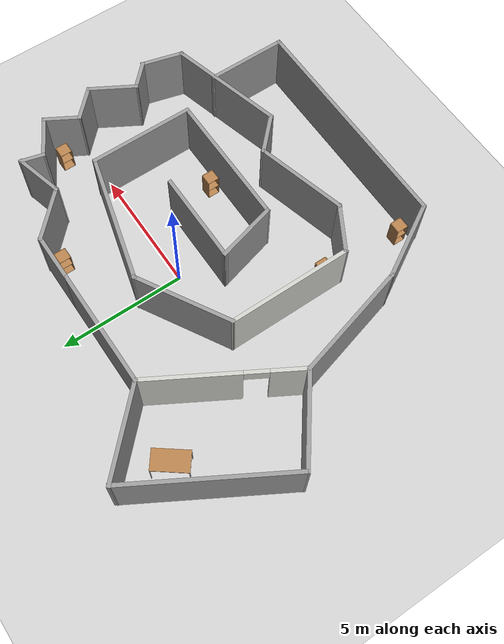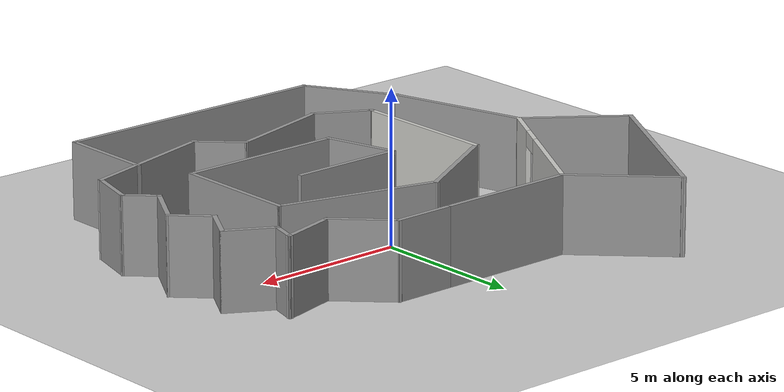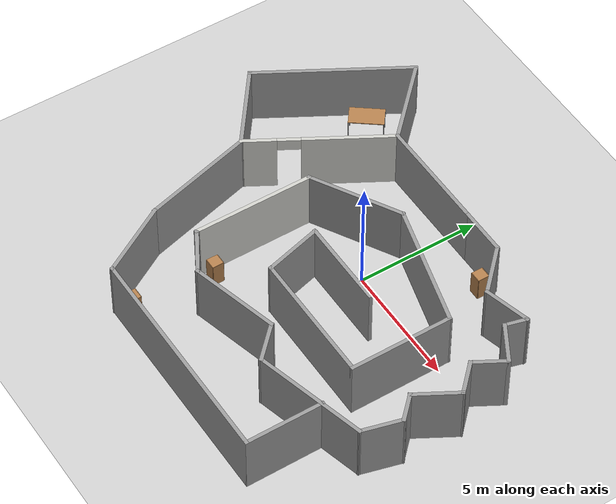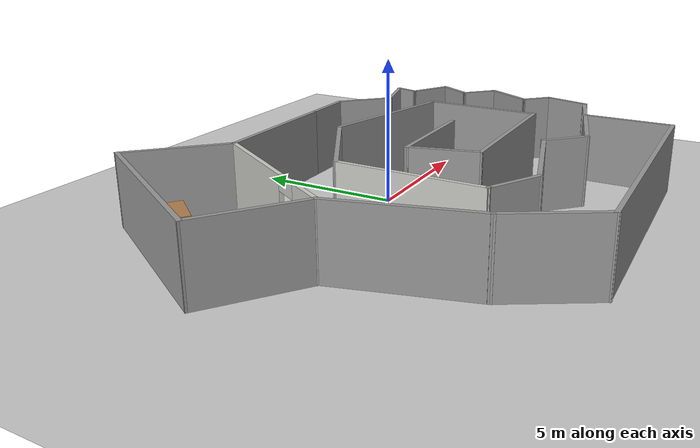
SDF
<sdf version="1.6">
 <world name="default">
  <light name="sun" type="directional">
   <pose>0 0 10 0 -0 0</pose>
   <diffuse>0.8 0.8 0.8 1</diffuse>
   <specular>0.1 0.1 0.1 1</specular>
   <attenuation>
    <range>1000</range>
    <constant>0.9</constant>
    <linear>0.01</linear>
    <quadratic>0.001</quadratic>
   </attenuation>
   <direction>-0.5 0.5 -1</direction>
  </light>
  <model name="ground_plane">
   <static>1</static>
   <link name="link">
    <collision name="collision">
     <geometry><plane><normal>0 0 1</normal><size>100 100</size></plane></geometry>
     <surface><friction><ode><mu>100</mu><mu2>50</mu2></ode></friction></surface>
    </collision>
    <visual name="visual">
     <cast_shadows>0</cast_shadows>
     <geometry><plane><normal>0 0 1</normal><size>100 100</size></plane></geometry>
     <material>
      <script><uri>file://media/materials/scripts/gazebo.material</uri><name>Gazebo/Grey</name></script>
     </material>
    </visual>
   </link>
  </model>
  <gravity>0 0 -9.8</gravity>
  <magnetic_field>6e-06 2.3e-05 -4.2e-05</magnetic_field>
  <atmosphere type="adiabatic"/>
  <physics name="default_physics" default="0" type="ode">
   <max_step_size>0.001</max_step_size>
   <real_time_factor>1</real_time_factor>
   <real_time_update_rate>1000</real_time_update_rate>
  </physics>
  <scene><ambient>0.4 0.4 0.4 1</ambient><background>0.7 0.7 0.7 1</background><shadows>1</shadows></scene>
  <spherical_coordinates>
   <surface_model>EARTH_WGS84</surface_model>
   <latitude_deg>0</latitude_deg>
   <longitude_deg>0</longitude_deg>
   <elevation>0</elevation>
   <heading_deg>0</heading_deg>
  </spherical_coordinates>
  <model name="complex_room">
   <pose>-0.705788 -1.01466 0 0 -0 0</pose>
   <link name="Wall_0">
    <collision name="Wall_0_Collision">
     <geometry><box><size>3.75 0.15 2.5</size></box></geometry>
     <pose>0 0 1.25 0 -0 0</pose>
    </collision>
    <visual name="Wall_0_Visual">
     <pose>0 0 1.25 0 -0 0</pose>
     <geometry><box><size>3.75 0.15 2.5</size></box></geometry>
     <material>
      <script><uri>file://media/materials/scripts/gazebo.material</uri><name>Gazebo/Grey</name></script>
      <ambient>1 1 1 1</ambient>
     </material>
    </visual>
    <pose>1.32014 -0.294823 0 0 -0 3.14159</pose>
   </link>
   <link name="Wall_1">
    <collision name="Wall_1_Collision">
     <geometry><box><size>2.5 0.15 2.5</size></box></geometry>
     <pose>0 0 1.25 0 -0 0</pose>
    </collision>
    <visual name="Wall_1_Visual">
     <pose>0 0 1.25 0 -0 0</pose>
     <geometry><box><size>2.5 0.15 2.5</size></box></geometry>
     <material>
      <script><uri>file://media/materials/scripts/gazebo.material</uri><name>Gazebo/Grey</name></script>
      <ambient>1 1 1 1</ambient>
     </material>
    </visual>
    <pose>-0.175747 -1.42979 0 0 0 -1.309</pose>
   </link>
   <link name="Wall_10">
    <collision name="Wall_10_Collision">
     <geometry><box><size>1.75 0.15 2.5</size></box></geometry>
     <pose>0 0 1.25 0 -0 0</pose>
    </collision>
    <visual name="Wall_10_Visual">
     <pose>0 0 1.25 0 -0 0</pose>
     <geometry><box><size>1.75 0.15 2.5</size></box></geometry>
     <material>
      <script><uri>file://media/materials/scripts/gazebo.material</uri><name>Gazebo/Grey</name></script>
      <ambient>1 1 1 1</ambient>
     </material>
    </visual>
    <pose>2.87311 -4.47871 0 0 0 -0.785398</pose>
   </link>
   <link name="Wall_11">
    <collision name="Wall_11_Collision">
     <geometry><box><size>4.75 0.15 2.5</size></box></geometry>
     <pose>0 0 1.25 0 -0 0</pose>
    </collision>
    <visual name="Wall_11_Visual">
     <pose>0 0 1.25 0 -0 0</pose>
     <geometry><box><size>4.75 0.15 2.5</size></box></geometry>
     <material>
      <script><uri>file://media/materials/scripts/gazebo.material</uri><name>Gazebo/Grey</name></script>
      <ambient>1 1 1 1</ambient>
     </material>
    </visual>
    <pose>5.66043 -4.44911 0 0 -0 0.261799</pose>
   </link>
   <link name="Wall_12">
    <collision name="Wall_12_Collision">
     <geometry><box><size>1.75 0.15 2.5</size></box></geometry>
     <pose>0 0 1.25 0 -0 0</pose>
    </collision>
    <visual name="Wall_12_Visual">
     <pose>0 0 1.25 0 -0 0</pose>
     <geometry><box><size>1.75 0.15 2.5</size></box></geometry>
     <material>
      <script><uri>file://media/materials/scripts/gazebo.material</uri><name>Gazebo/Grey</name></script>
      <ambient>1 1 1 1</ambient>
     </material>
    </visual>
    <pose>8.08911 -3.08109 0 0 -0 1.309</pose>
   </link>
   <link name="Wall_13">
    <collision name="Wall_13_Collision">
     <geometry><box><size>1.25 0.15 2.5</size></box></geometry>
     <pose>0 0 1.25 0 -0 0</pose>
    </collision>
    <visual name="Wall_13_Visual">
     <pose>0 0 1.25 0 -0 0</pose>
     <geometry><box><size>1.25 0.15 2.5</size></box></geometry>
     <material>
      <script><uri>file://media/materials/scripts/gazebo.material</uri><name>Gazebo/Grey</name></script>
      <ambient>1 1 1 1</ambient>
     </material>
    </visual>
    <pose>7.90726 -1.91944 0 0 -0 2.35619</pose>
   </link>
   <link name="Wall_14">
    <collision name="Wall_14_Collision">
     <geometry><box><size>2 0.15 2.5</size></box></geometry>
     <pose>0 0 1.25 0 -0 0</pose>
    </collision>
    <visual name="Wall_14_Visual">
     <pose>0 0 1.25 0 -0 0</pose>
     <geometry><box><size>2 0.15 2.5</size></box></geometry>
     <material>
      <script><uri>file://media/materials/scripts/gazebo.material</uri><name>Gazebo/Grey</name></script>
      <ambient>1 1 1 1</ambient>
     </material>
    </visual>
    <pose>7.98085 -0.729454 0 0 -0 1.0472</pose>
   </link>
   <link name="Wall_15">
    <collision name="Wall_15_Collision">
     <geometry><box><size>1.5 0.15 2.5</size></box></geometry>
     <pose>0 0 1.25 0 -0 0</pose>
    </collision>
    <visual name="Wall_15_Visual">
     <pose>0 0 1.25 0 -0 0</pose>
     <geometry><box><size>1.5 0.15 2.5</size></box></geometry>
     <material>
      <script><uri>file://media/materials/scripts/gazebo.material</uri><name>Gazebo/Grey</name></script>
      <ambient>1 1 1 1</ambient>
     </material>
    </visual>
    <pose>7.96605 0.548917 0 0 -0 2.35619</pose>
   </link>
   <link name="Wall_16">
    <collision name="Wall_16_Collision">
     <geometry><box><size>1.5 0.15 2.5</size></box></geometry>
     <pose>0 0 1.25 0 -0 0</pose>
    </collision>
    <visual name="Wall_16_Visual">
     <pose>0 0 1.25 0 -0 0</pose>
     <geometry><box><size>1.5 0.15 2.5</size></box></geometry>
     <material>
      <script><uri>file://media/materials/scripts/gazebo.material</uri><name>Gazebo/Grey</name></script>
      <ambient>1 1 1 1</ambient>
     </material>
    </visual>
    <pose>7.82625 1.61078 0 0 -0 1.0472</pose>
   </link>
   <link name="Wall_17">
    <collision name="Wall_17_Collision">
     <geometry><box><size>1.75 0.15 2.5</size></box></geometry>
     <pose>0 0 1.25 0 -0 0</pose>
    </collision>
    <visual name="Wall_17_Visual">
     <pose>0 0 1.25 0 -0 0</pose>
     <geometry><box><size>1.75 0.15 2.5</size></box></geometry>
     <material>
      <script><uri>file://media/materials/scripts/gazebo.material</uri><name>Gazebo/Grey</name></script>
      <ambient>1 1 1 1</ambient>
     </material>
    </visual>
    <pose>7.47093 2.59535 0 0 -0 2.61799</pose>
   </link>
   <link name="Wall_18">
    <collision name="Wall_18_Collision">
     <geometry><box><size>1 0.15 2.5</size></box></geometry>
     <pose>0 0 1.25 0 -0 0</pose>
    </collision>
    <visual name="Wall_18_Visual">
     <pose>0 0 1.25 0 -0 0</pose>
     <geometry><box><size>1 0.15 2.5</size></box></geometry>
     <material>
      <script><uri>file://media/materials/scripts/gazebo.material</uri><name>Gazebo/Grey</name></script>
      <ambient>1 1 1 1</ambient>
     </material>
    </visual>
    <pose>6.88811 3.40587 0 0 -0 1.309</pose>
   </link>
   <link name="Wall_19">
    <collision name="Wall_19_Collision">
     <geometry><box><size>2 0.15 2.5</size></box></geometry>
     <pose>0 0 1.25 0 -0 0</pose>
    </collision>
    <visual name="Wall_19_Visual">
     <pose>0 0 1.25 0 -0 0</pose>
     <geometry><box><size>2 0.15 2.5</size></box></geometry>
     <material>
      <script><uri>file://media/materials/scripts/gazebo.material</uri><name>Gazebo/Grey</name></script>
      <ambient>1 1 1 1</ambient>
     </material>
    </visual>
    <pose>6.10463 3.57698 0 0 0 -2.87979</pose>
   </link>
   <link name="Wall_2">
    <collision name="Wall_2_Collision">
     <geometry><box><size>5.5 0.15 2.5</size></box></geometry>
     <pose>0 0 1.25 0 -0 0</pose>
    </collision>
    <visual name="Wall_2_Visual">
     <pose>0 0 1.25 0 -0 0</pose>
     <geometry><box><size>5.5 0.15 2.5</size></box></geometry>
     <material>
      <script><uri>file://media/materials/scripts/gazebo.material</uri><name>Gazebo/Grey</name></script>
      <ambient>1 1 1 1</ambient>
     </material>
    </visual>
    <pose>2.80336 -2.56475 0 0 -0 0</pose>
   </link>
   <link name="Wall_20">
    <collision name="Wall_20_Collision">
     <geometry><box><size>2.25 0.15 2.5</size></box></geometry>
     <pose>0 0 1.25 0 -0 0</pose>
    </collision>
    <visual name="Wall_20_Visual">
     <pose>0 0 1.25 0 -0 0</pose>
     <geometry><box><size>2.25 0.15 2.5</size></box></geometry>
     <material>
      <script><uri>file://media/materials/scripts/gazebo.material</uri><name>Gazebo/Grey</name></script>
      <ambient>1 1 1 1</ambient>
     </material>
    </visual>
    <pose>4.46868 4.08003 0 0 -0 2.35619</pose>
   </link>
   <link name="Wall_21">
    <collision name="Wall_21_Collision">
     <geometry><box><size>2 0.15 2.5</size></box></geometry>
     <pose>0 0 1.25 0 -0 0</pose>
    </collision>
    <visual name="Wall_21_Visual">
     <pose>0 0 1.25 0 -0 0</pose>
     <geometry><box><size>2 0.15 2.5</size></box></geometry>
     <material>
      <script><uri>file://media/materials/scripts/gazebo.material</uri><name>Gazebo/Grey</name></script>
      <ambient>1 1 1 1</ambient>
     </material>
    </visual>
    <pose>2.80122 4.82249 0 0 -0 3.14159</pose>
   </link>
   <link name="Wall_22">
    <collision name="Wall_22_Collision">
     <geometry><box><size>4.75 0.15 2.5</size></box></geometry>
     <pose>0 0 1.25 0 -0 0</pose>
    </collision>
    <visual name="Wall_22_Visual">
     <pose>0 0 1.25 0 -0 0</pose>
     <geometry><box><size>4.75 0.15 2.5</size></box></geometry>
     <material>
      <script><uri>file://media/materials/scripts/gazebo.material</uri><name>Gazebo/Grey</name></script>
      <ambient>1 1 1 1</ambient>
     </material>
    </visual>
    <pose>-0.423777 4.82249 0 0 -0 3.14159</pose>
   </link>
   <link name="Wall_23">
    <pose>-4.18628 2.28937 0 0 0 -2.0944</pose>
    <visual name="Wall_23_Visual_0">
     <pose>-1.15422 0 1.25 0 -0 0</pose>
     <geometry><box><size>3.69155 0.15 2.5</size></box></geometry>
     <material>
      <script><uri>file://media/materials/scripts/gazebo.material</uri><name>Gazebo/CeilingTiled</name></script>
      <ambient>1 1 1 1</ambient>
     </material>
    </visual>
    <collision name="Wall_23_Collision_0">
     <geometry><box><size>3.69155 0.15 2.5</size></box></geometry>
     <pose>-1.15422 0 1.25 0 -0 0</pose>
    </collision>
    <visual name="Wall_23_Visual_1">
     <pose>2.29578 0 1.25 0 -0 0</pose>
     <geometry><box><size>1.40845 0.15 2.5</size></box></geometry>
     <material>
      <script><uri>file://media/materials/scripts/gazebo.material</uri><name>Gazebo/CeilingTiled</name></script>
      <ambient>1 1 1 1</ambient>
     </material>
    </visual>
    <collision name="Wall_23_Collision_1">
     <geometry><box><size>1.40845 0.15 2.5</size></box></geometry>
     <pose>2.29578 0 1.25 0 -0 0</pose>
    </collision>
    <visual name="Wall_23_Visual_2">
     <pose>1.14155 0 2.25 0 -0 0</pose>
     <geometry><box><size>0.9 0.15 0.5</size></box></geometry>
     <material>
      <script><uri>file://media/materials/scripts/gazebo.material</uri><name>Gazebo/CeilingTiled</name></script>
      <ambient>1 1 1 1</ambient>
     </material>
    </visual>
    <collision name="Wall_23_Collision_2">
     <geometry><box><size>0.9 0.15 0.5</size></box></geometry>
     <pose>1.14155 0 2.25 0 -0 0</pose>
    </collision>
   </link>
   <link name="Wall_24">
    <collision name="Wall_24_Collision">
     <geometry><box><size>4.75 0.15 2.5</size></box></geometry>
     <pose>0 0 1.25 0 -0 0</pose>
    </collision>
    <visual name="Wall_24_Visual">
     <pose>0 0 1.25 0 -0 0</pose>
     <geometry><box><size>4.75 0.15 2.5</size></box></geometry>
     <material>
      <script><uri>file://media/materials/scripts/gazebo.material</uri><name>Gazebo/Grey</name></script>
      <ambient>1 1 1 1</ambient>
     </material>
    </visual>
    <pose>-5.05349 -2.46538 0 0 0 -1.309</pose>
   </link>
   <link name="Wall_25">
    <collision name="Wall_25_Collision">
     <geometry><box><size>3.25 0.15 2.5</size></box></geometry>
     <pose>0 0 1.25 0 -0 0</pose>
    </collision>
    <visual name="Wall_25_Visual">
     <pose>0 0 1.25 0 -0 0</pose>
     <geometry><box><size>3.25 0.15 2.5</size></box></geometry>
     <material>
      <script><uri>file://media/materials/scripts/gazebo.material</uri><name>Gazebo/Grey</name></script>
      <ambient>1 1 1 1</ambient>
     </material>
    </visual>
    <pose>-3.68321 -6.02935 0 0 0 -1.0472</pose>
   </link>
   <link name="Wall_26">
    <collision name="Wall_26_Collision">
     <geometry><box><size>9.25 0.15 2.5</size></box></geometry>
     <pose>0 0 1.25 0 -0 0</pose>
    </collision>
    <visual name="Wall_26_Visual">
     <pose>0 0 1.25 0 -0 0</pose>
     <geometry><box><size>9.25 0.15 2.5</size></box></geometry>
     <material>
      <script><uri>file://media/materials/scripts/gazebo.material</uri><name>Gazebo/Grey</name></script>
      <ambient>1 1 1 1</ambient>
     </material>
    </visual>
    <pose>1.64179 -7.37169 0 0 -0 0</pose>
   </link>
   <link name="Wall_27">
    <collision name="Wall_27_Collision">
     <geometry><box><size>3.25 0.15 2.5</size></box></geometry>
     <pose>0 0 1.25 0 -0 0</pose>
    </collision>
    <visual name="Wall_27_Visual">
     <pose>0 0 1.25 0 -0 0</pose>
     <geometry><box><size>3.25 0.15 2.5</size></box></geometry>
     <material>
      <script><uri>file://media/materials/scripts/gazebo.material</uri><name>Gazebo/Grey</name></script>
      <ambient>1 1 1 1</ambient>
     </material>
    </visual>
    <pose>6.19179 -5.82169 0 0 -0 1.5708</pose>
   </link>
   <link name="Wall_29">
    <collision name="Wall_29_Collision">
     <geometry><box><size>3.75 0.15 2.5</size></box></geometry>
     <pose>0 0 1.25 0 -0 0</pose>
    </collision>
    <visual name="Wall_29_Visual">
     <pose>0 0 1.25 0 -0 0</pose>
     <geometry><box><size>3.75 0.15 2.5</size></box></geometry>
     <material>
      <script><uri>file://media/materials/scripts/gazebo.material</uri><name>Gazebo/Grey</name></script>
      <ambient>1 1 1 1</ambient>
     </material>
    </visual>
    <pose>-3.99657 6.09529 0 0 -0 2.35619</pose>
   </link>
   <link name="Wall_3">
    <collision name="Wall_3_Collision">
     <geometry><box><size>4.25 0.15 2.5</size></box></geometry>
     <pose>0 0 1.25 0 -0 0</pose>
    </collision>
    <visual name="Wall_3_Visual">
     <pose>0 0 1.25 0 -0 0</pose>
     <geometry><box><size>4.25 0.15 2.5</size></box></geometry>
     <material>
      <script><uri>file://media/materials/scripts/gazebo.material</uri><name>Gazebo/Grey</name></script>
      <ambient>1 1 1 1</ambient>
     </material>
    </visual>
    <pose>5.47837 -0.514749 0 0 -0 1.5708</pose>
   </link>
   <link name="Wall_30">
    <collision name="Wall_30_Collision">
     <geometry><box><size>6.5 0.15 2.5</size></box></geometry>
     <pose>0 0 1.25 0 -0 0</pose>
    </collision>
    <visual name="Wall_30_Visual">
     <pose>0 0 1.25 0 -0 0</pose>
     <geometry><box><size>6.5 0.15 2.5</size></box></geometry>
     <material>
      <script><uri>file://media/materials/scripts/gazebo.material</uri><name>Gazebo/Grey</name></script>
      <ambient>1 1 1 1</ambient>
     </material>
    </visual>
    <pose>-6.85686 4.61845 0 0 0 -2.0944</pose>
   </link>
   <link name="Wall_31">
    <collision name="Wall_31_Collision">
     <geometry><box><size>3.65403 0.15 2.5</size></box></geometry>
     <pose>0 0 1.25 0 -0 0</pose>
    </collision>
    <visual name="Wall_31_Visual">
     <pose>0 0 1.25 0 -0 0</pose>
     <geometry><box><size>3.65403 0.15 2.5</size></box></geometry>
     <material>
      <script><uri>file://media/materials/scripts/gazebo.material</uri><name>Gazebo/Grey</name></script>
      <ambient>1 1 1 1</ambient>
     </material>
    </visual>
    <pose>-7.04657 0.812531 0 0 0 -0.647127</pose>
   </link>
   <link name="Wall_4">
    <collision name="Wall_4_Collision">
     <geometry><box><size>5.25 0.15 2.5</size></box></geometry>
     <pose>0 0 1.25 0 -0 0</pose>
    </collision>
    <visual name="Wall_4_Visual">
     <pose>0 0 1.25 0 -0 0</pose>
     <geometry><box><size>5.25 0.15 2.5</size></box></geometry>
     <material>
      <script><uri>file://media/materials/scripts/gazebo.material</uri><name>Gazebo/Grey</name></script>
      <ambient>1 1 1 1</ambient>
     </material>
    </visual>
    <pose>3.01525 2.19524 0 0 -0 2.87979</pose>
   </link>
   <link name="Wall_5">
    <collision name="Wall_5_Collision">
     <geometry><box><size>4 0.15 2.5</size></box></geometry>
     <pose>0 0 1.25 0 -0 0</pose>
    </collision>
    <visual name="Wall_5_Visual">
     <pose>0 0 1.25 0 -0 0</pose>
     <geometry><box><size>4 0.15 2.5</size></box></geometry>
     <material>
      <script><uri>file://media/materials/scripts/gazebo.material</uri><name>Gazebo/Grey</name></script>
      <ambient>1 1 1 1</ambient>
     </material>
    </visual>
    <pose>-1.11495 1.89273 0 0 0 -2.61799</pose>
   </link>
   <link name="Wall_6">
    <collision name="Wall_6_Collision">
     <geometry><box><size>5 0.15 2.5</size></box></geometry>
     <pose>0 0 1.25 0 -0 0</pose>
    </collision>
    <visual name="Wall_6_Visual">
     <pose>0 0 1.25 0 -0 0</pose>
     <geometry><box><size>5 0.15 2.5</size></box></geometry>
     <material>
      <script><uri>file://media/materials/scripts/gazebo.material</uri><name>Gazebo/CeilingTiled</name></script>
      <ambient>1 1 1 1</ambient>
     </material>
    </visual>
    <pose>-2.78205 -1.49477 0 0 0 -1.5708</pose>
   </link>
   <link name="Wall_7">
    <collision name="Wall_7_Collision">
     <geometry><box><size>0.16 0.15 2.5</size></box></geometry>
     <pose>0 0 1.25 0 -0 0</pose>
    </collision>
    <visual name="Wall_7_Visual">
     <pose>0 0 1.25 0 -0 0</pose>
     <geometry><box><size>0.16 0.15 2.5</size></box></geometry>
     <material>
      <script><uri>file://media/materials/scripts/gazebo.material</uri><name>Gazebo/Grey</name></script>
      <ambient>1 1 1 1</ambient>
     </material>
    </visual>
    <pose>-2.77705 -3.91977 0 0 -0 0</pose>
   </link>
   <link name="Wall_8">
    <collision name="Wall_8_Collision">
     <geometry><box><size>2 0.15 2.5</size></box></geometry>
     <pose>0 0 1.25 0 -0 0</pose>
    </collision>
    <visual name="Wall_8_Visual">
     <pose>0 0 1.25 0 -0 0</pose>
     <geometry><box><size>2 0.15 2.5</size></box></geometry>
     <material>
      <script><uri>file://media/materials/scripts/gazebo.material</uri><name>Gazebo/Grey</name></script>
      <ambient>1 1 1 1</ambient>
     </material>
    </visual>
    <pose>-1.97098 -4.38227 0 0 0 -0.523599</pose>
   </link>
   <link name="Wall_9">
    <collision name="Wall_9_Collision">
     <geometry><box><size>3.75 0.15 2.5</size></box></geometry>
     <pose>0 0 1.25 0 -0 0</pose>
    </collision>
    <visual name="Wall_9_Visual">
     <pose>0 0 1.25 0 -0 0</pose>
     <geometry><box><size>3.75 0.15 2.5</size></box></geometry>
     <material>
      <script><uri>file://media/materials/scripts/gazebo.material</uri><name>Gazebo/Grey</name></script>
      <ambient>1 1 1 1</ambient>
     </material>
    </visual>
    <pose>0.568759 -4.3789 0 0 -0 0.261799</pose>
   </link>
   <static>1</static>
  </model>
  <model name="table">
   <static>0</static>
   <link name="link">
    <collision name="surface">
     <pose>0 0 1 0 -0 0</pose>
     <geometry><box><size>1.5 0.8 0.03</size></box></geometry>
     <surface><friction><ode><mu>0.6</mu><mu2>0.6</mu2></ode></friction></surface>
    </collision>
    <visual name="visual1">
     <pose>0 0 1 0 -0 0</pose>
     <geometry><box><size>1.4 0.8 0.04</size></box></geometry>
     <material>
      <script><uri>file://media/materials/scripts/gazebo.material</uri><name>Gazebo/Wood</name></script>
     </material>
    </visual>
    <collision name="front_left_leg">
     <pose>0.68 0.38 0.5 0 -0 0</pose>
     <geometry><cylinder><radius>0.02</radius><length>1</length></cylinder></geometry>
    </collision>
    <visual name="front_left_leg">
     <pose>0.68 0.38 0.5 0 -0 0</pose>
     <geometry><cylinder><radius>0.02</radius><length>1</length></cylinder></geometry>
     <material>
      <script><uri>file://media/materials/scripts/gazebo.material</uri><name>Gazebo/Grey</name></script>
     </material>
    </visual>
    <collision name="front_right_leg">
     <pose>0.68 -0.38 0.5 0 -0 0</pose>
     <geometry><cylinder><radius>0.02</radius><length>1</length></cylinder></geometry>
    </collision>
    <visual name="front_right_leg">
     <pose>0.68 -0.38 0.5 0 -0 0</pose>
     <geometry><cylinder><radius>0.02</radius><length>1</length></cylinder></geometry>
     <material>
      <script><uri>file://media/materials/scripts/gazebo.material</uri><name>Gazebo/Grey</name></script>
     </material>
    </visual>
    <collision name="back_right_leg">
     <pose>-0.68 -0.38 0.5 0 -0 0</pose>
     <geometry><cylinder><radius>0.02</radius><length>1</length></cylinder></geometry>
    </collision>
    <visual name="back_right_leg">
     <pose>-0.68 -0.38 0.5 0 -0 0</pose>
     <geometry><cylinder><radius>0.02</radius><length>1</length></cylinder></geometry>
     <material>
      <script><uri>file://media/materials/scripts/gazebo.material</uri><name>Gazebo/Grey</name></script>
     </material>
    </visual>
    <collision name="back_left_leg">
     <pose>-0.68 0.38 0.5 0 -0 0</pose>
     <geometry><cylinder><radius>0.02</radius><length>1</length></cylinder></geometry>
    </collision>
    <visual name="back_left_leg">
     <pose>-0.68 0.38 0.5 0 -0 0</pose>
     <geometry><cylinder><radius>0.02</radius><length>1</length></cylinder></geometry>
     <material>
      <script><uri>file://media/materials/scripts/gazebo.material</uri><name>Gazebo/Grey</name></script>
     </material>
    </visual>
    <inertial>
     <inertia><ixx>1</ixx><ixy>0</ixy><ixz>0</ixz><iyy>1</iyy><iyz>0</iyz><izz>1</izz></inertia>
     <mass>1</mass>
    </inertial>
   </link>
   <pose>-6.00812 4.15369 -2e-06 0 -0 0.920163</pose>
  </model>
  <model name="cabinet">
   <static>1</static>
   <link name="cabinet_bottom_plate">
    <inertial>
     <pose>0 0 -1 0 -0 0</pose>
     <inertia><ixx>2.05</ixx><ixy>0</ixy><ixz>0</ixz><iyy>2.05</iyy><iyz>0</iyz><izz>2.05</izz></inertia>
     <mass>25</mass>
    </inertial>
    <collision name="cabinet_bottom_plate_geom">
     <pose>0 0 0.01 0 -0 0</pose>
     <geometry><box><size>0.45 0.45 0.02</size></box></geometry>
    </collision>
    <visual name="cabinet_bottom_plate_geom_visual">
     <pose>0 0 0.01 0 -0 0</pose>
     <geometry><box><size>0.45 0.45 0.02</size></box></geometry>
     <material>
      <script><uri>file://media/materials/scripts/gazebo.material</uri><name>Gazebo/Wood</name></script>
     </material>
    </visual>
    <collision name="cabinet_bottom_plate_geom_cabinet_back_plate">
     <pose>0.235 0 0.51 0 -0 0</pose>
     <geometry><box><size>0.02 0.45 1.02</size></box></geometry>
    </collision>
    <visual name="cabinet_bottom_plate_geom_cabinet_back_plate_visual">
     <pose>0.235 0 0.51 0 -0 0</pose>
     <geometry><box><size>0.02 0.45 1.02</size></box></geometry>
     <material>
      <script><uri>file://media/materials/scripts/gazebo.material</uri><name>Gazebo/Wood</name></script>
     </material>
    </visual>
    <collision name="cabinet_bottom_plate_geom_cabinet_left_plate">
     <pose>0 0.235 0.51 0 -0 0</pose>
     <geometry><box><size>0.45 0.02 1.02</size></box></geometry>
    </collision>
    <visual name="cabinet_bottom_plate_geom_cabinet_left_plate_visual">
     <pose>0 0.235 0.51 0 -0 0</pose>
     <geometry><box><size>0.45 0.02 1.02</size></box></geometry>
     <material>
      <script><uri>file://media/materials/scripts/gazebo.material</uri><name>Gazebo/Wood</name></script>
     </material>
    </visual>
    <collision name="cabinet_bottom_plate_geom_cabinet_middle_plate">
     <pose>0 0 0.51 0 -0 0</pose>
     <geometry><box><size>0.45 0.45 0.02</size></box></geometry>
    </collision>
    <visual name="cabinet_bottom_plate_geom_cabinet_middle_plate_visual">
     <pose>0 0 0.51 0 -0 0</pose>
     <geometry><box><size>0.45 0.45 0.02</size></box></geometry>
     <material>
      <script><uri>file://media/materials/scripts/gazebo.material</uri><name>Gazebo/Wood</name></script>
     </material>
    </visual>
    <collision name="cabinet_bottom_plate_geom_cabinet_right_plate">
     <pose>0 -0.235 0.51 0 -0 0</pose>
     <geometry><box><size>0.45 0.02 1.02</size></box></geometry>
    </collision>
    <visual name="cabinet_bottom_plate_geom_cabinet_right_plate_visual">
     <pose>0 -0.235 0.51 0 -0 0</pose>
     <geometry><box><size>0.45 0.02 1.02</size></box></geometry>
     <material>
      <script><uri>file://media/materials/scripts/gazebo.material</uri><name>Gazebo/Wood</name></script>
     </material>
    </visual>
    <collision name="cabinet_bottom_plate_geom_cabinet_top_plate">
     <pose>0 0 1.01 0 -0 0</pose>
     <geometry><box><size>0.45 0.45 0.02</size></box></geometry>
    </collision>
    <visual name="cabinet_bottom_plate_geom_cabinet_top_plate_visual">
     <pose>0 0 1.01 0 -0 0</pose>
     <geometry><box><size>0.45 0.45 0.02</size></box></geometry>
     <material>
      <script><uri>file://media/materials/scripts/gazebo.material</uri><name>Gazebo/Wood</name></script>
     </material>
    </visual>
   </link>
   <pose>2.76634 3.32356 0 0 -0 0</pose>
  </model>
  <model name="cabinet_0">
   <static>1</static>
   <link name="cabinet_bottom_plate">
    <inertial>
     <pose>0 0 -1 0 -0 0</pose>
     <inertia><ixx>2.05</ixx><ixy>0</ixy><ixz>0</ixz><iyy>2.05</iyy><iyz>0</iyz><izz>2.05</izz></inertia>
     <mass>25</mass>
    </inertial>
    <collision name="cabinet_bottom_plate_geom">
     <pose>0 0 0.01 0 -0 0</pose>
     <geometry><box><size>0.45 0.45 0.02</size></box></geometry>
    </collision>
    <visual name="cabinet_bottom_plate_geom_visual">
     <pose>0 0 0.01 0 -0 0</pose>
     <geometry><box><size>0.45 0.45 0.02</size></box></geometry>
     <material>
      <script><uri>file://media/materials/scripts/gazebo.material</uri><name>Gazebo/Wood</name></script>
     </material>
    </visual>
    <collision name="cabinet_bottom_plate_geom_cabinet_back_plate">
     <pose>0.235 0 0.51 0 -0 0</pose>
     <geometry><box><size>0.02 0.45 1.02</size></box></geometry>
    </collision>
    <visual name="cabinet_bottom_plate_geom_cabinet_back_plate_visual">
     <pose>0.235 0 0.51 0 -0 0</pose>
     <geometry><box><size>0.02 0.45 1.02</size></box></geometry>
     <material>
      <script><uri>file://media/materials/scripts/gazebo.material</uri><name>Gazebo/Wood</name></script>
     </material>
    </visual>
    <collision name="cabinet_bottom_plate_geom_cabinet_left_plate">
     <pose>0 0.235 0.51 0 -0 0</pose>
     <geometry><box><size>0.45 0.02 1.02</size></box></geometry>
    </collision>
    <visual name="cabinet_bottom_plate_geom_cabinet_left_plate_visual">
     <pose>0 0.235 0.51 0 -0 0</pose>
     <geometry><box><size>0.45 0.02 1.02</size></box></geometry>
     <material>
      <script><uri>file://media/materials/scripts/gazebo.material</uri><name>Gazebo/Wood</name></script>
     </material>
    </visual>
    <collision name="cabinet_bottom_plate_geom_cabinet_middle_plate">
     <pose>0 0 0.51 0 -0 0</pose>
     <geometry><box><size>0.45 0.45 0.02</size></box></geometry>
    </collision>
    <visual name="cabinet_bottom_plate_geom_cabinet_middle_plate_visual">
     <pose>0 0 0.51 0 -0 0</pose>
     <geometry><box><size>0.45 0.45 0.02</size></box></geometry>
     <material>
      <script><uri>file://media/materials/scripts/gazebo.material</uri><name>Gazebo/Wood</name></script>
     </material>
    </visual>
    <collision name="cabinet_bottom_plate_geom_cabinet_right_plate">
     <pose>0 -0.235 0.51 0 -0 0</pose>
     <geometry><box><size>0.45 0.02 1.02</size></box></geometry>
    </collision>
    <visual name="cabinet_bottom_plate_geom_cabinet_right_plate_visual">
     <pose>0 -0.235 0.51 0 -0 0</pose>
     <geometry><box><size>0.45 0.02 1.02</size></box></geometry>
     <material>
      <script><uri>file://media/materials/scripts/gazebo.material</uri><name>Gazebo/Wood</name></script>
     </material>
    </visual>
    <collision name="cabinet_bottom_plate_geom_cabinet_top_plate">
     <pose>0 0 1.01 0 -0 0</pose>
     <geometry><box><size>0.45 0.45 0.02</size></box></geometry>
    </collision>
    <visual name="cabinet_bottom_plate_geom_cabinet_top_plate_visual">
     <pose>0 0 1.01 0 -0 0</pose>
     <geometry><box><size>0.45 0.45 0.02</size></box></geometry>
     <material>
      <script><uri>file://media/materials/scripts/gazebo.material</uri><name>Gazebo/Wood</name></script>
     </material>
    </visual>
   </link>
   <pose>-3.2307 -7.85388 0 0 -0 0</pose>
  </model>
  <model name="cabinet_1">
   <static>1</static>
   <link name="cabinet_bottom_plate">
    <inertial>
     <pose>0 0 -1 0 -0 0</pose>
     <inertia><ixx>2.05</ixx><ixy>0</ixy><ixz>0</ixz><iyy>2.05</iyy><iyz>0</iyz><izz>2.05</izz></inertia>
     <mass>25</mass>
    </inertial>
    <collision name="cabinet_bottom_plate_geom">
     <pose>0 0 0.01 0 -0 0</pose>
     <geometry><box><size>0.45 0.45 0.02</size></box></geometry>
    </collision>
    <visual name="cabinet_bottom_plate_geom_visual">
     <pose>0 0 0.01 0 -0 0</pose>
     <geometry><box><size>0.45 0.45 0.02</size></box></geometry>
     <material>
      <script><uri>file://media/materials/scripts/gazebo.material</uri><name>Gazebo/Wood</name></script>
     </material>
    </visual>
    <collision name="cabinet_bottom_plate_geom_cabinet_back_plate">
     <pose>0.235 0 0.51 0 -0 0</pose>
     <geometry><box><size>0.02 0.45 1.02</size></box></geometry>
    </collision>
    <visual name="cabinet_bottom_plate_geom_cabinet_back_plate_visual">
     <pose>0.235 0 0.51 0 -0 0</pose>
     <geometry><box><size>0.02 0.45 1.02</size></box></geometry>
     <material>
      <script><uri>file://media/materials/scripts/gazebo.material</uri><name>Gazebo/Wood</name></script>
     </material>
    </visual>
    <collision name="cabinet_bottom_plate_geom_cabinet_left_plate">
     <pose>0 0.235 0.51 0 -0 0</pose>
     <geometry><box><size>0.45 0.02 1.02</size></box></geometry>
    </collision>
    <visual name="cabinet_bottom_plate_geom_cabinet_left_plate_visual">
     <pose>0 0.235 0.51 0 -0 0</pose>
     <geometry><box><size>0.45 0.02 1.02</size></box></geometry>
     <material>
      <script><uri>file://media/materials/scripts/gazebo.material</uri><name>Gazebo/Wood</name></script>
     </material>
    </visual>
    <collision name="cabinet_bottom_plate_geom_cabinet_middle_plate">
     <pose>0 0 0.51 0 -0 0</pose>
     <geometry><box><size>0.45 0.45 0.02</size></box></geometry>
    </collision>
    <visual name="cabinet_bottom_plate_geom_cabinet_middle_plate_visual">
     <pose>0 0 0.51 0 -0 0</pose>
     <geometry><box><size>0.45 0.45 0.02</size></box></geometry>
     <material>
      <script><uri>file://media/materials/scripts/gazebo.material</uri><name>Gazebo/Wood</name></script>
     </material>
    </visual>
    <collision name="cabinet_bottom_plate_geom_cabinet_right_plate">
     <pose>0 -0.235 0.51 0 -0 0</pose>
     <geometry><box><size>0.45 0.02 1.02</size></box></geometry>
    </collision>
    <visual name="cabinet_bottom_plate_geom_cabinet_right_plate_visual">
     <pose>0 -0.235 0.51 0 -0 0</pose>
     <geometry><box><size>0.45 0.02 1.02</size></box></geometry>
     <material>
      <script><uri>file://media/materials/scripts/gazebo.material</uri><name>Gazebo/Wood</name></script>
     </material>
    </visual>
    <collision name="cabinet_bottom_plate_geom_cabinet_top_plate">
     <pose>0 0 1.01 0 -0 0</pose>
     <geometry><box><size>0.45 0.45 0.02</size></box></geometry>
    </collision>
    <visual name="cabinet_bottom_plate_geom_cabinet_top_plate_visual">
     <pose>0 0 1.01 0 -0 0</pose>
     <geometry><box><size>0.45 0.45 0.02</size></box></geometry>
     <material>
      <script><uri>file://media/materials/scripts/gazebo.material</uri><name>Gazebo/Wood</name></script>
     </material>
    </visual>
   </link>
   <pose>-2.98348 -4.50409 0 0 -0 0</pose>
  </model>
  <model name="cabinet_3">
   <static>1</static>
   <link name="cabinet_bottom_plate">
    <inertial>
     <pose>0 0 -1 0 -0 0</pose>
     <inertia><ixx>2.05</ixx><ixy>0</ixy><ixz>0</ixz><iyy>2.05</iyy><iyz>0</iyz><izz>2.05</izz></inertia>
     <mass>25</mass>
    </inertial>
    <collision name="cabinet_bottom_plate_geom">
     <pose>0 0 0.01 0 -0 0</pose>
     <geometry><box><size>0.45 0.45 0.02</size></box></geometry>
    </collision>
    <visual name="cabinet_bottom_plate_geom_visual">
     <pose>0 0 0.01 0 -0 0</pose>
     <geometry><box><size>0.45 0.45 0.02</size></box></geometry>
     <material>
      <script><uri>file://media/materials/scripts/gazebo.material</uri><name>Gazebo/Wood</name></script>
     </material>
    </visual>
    <collision name="cabinet_bottom_plate_geom_cabinet_back_plate">
     <pose>0.235 0 0.51 0 -0 0</pose>
     <geometry><box><size>0.02 0.45 1.02</size></box></geometry>
    </collision>
    <visual name="cabinet_bottom_plate_geom_cabinet_back_plate_visual">
     <pose>0.235 0 0.51 0 -0 0</pose>
     <geometry><box><size>0.02 0.45 1.02</size></box></geometry>
     <material>
      <script><uri>file://media/materials/scripts/gazebo.material</uri><name>Gazebo/Wood</name></script>
     </material>
    </visual>
    <collision name="cabinet_bottom_plate_geom_cabinet_left_plate">
     <pose>0 0.235 0.51 0 -0 0</pose>
     <geometry><box><size>0.45 0.02 1.02</size></box></geometry>
    </collision>
    <visual name="cabinet_bottom_plate_geom_cabinet_left_plate_visual">
     <pose>0 0.235 0.51 0 -0 0</pose>
     <geometry><box><size>0.45 0.02 1.02</size></box></geometry>
     <material>
      <script><uri>file://media/materials/scripts/gazebo.material</uri><name>Gazebo/Wood</name></script>
     </material>
    </visual>
    <collision name="cabinet_bottom_plate_geom_cabinet_middle_plate">
     <pose>0 0 0.51 0 -0 0</pose>
     <geometry><box><size>0.45 0.45 0.02</size></box></geometry>
    </collision>
    <visual name="cabinet_bottom_plate_geom_cabinet_middle_plate_visual">
     <pose>0 0 0.51 0 -0 0</pose>
     <geometry><box><size>0.45 0.45 0.02</size></box></geometry>
     <material>
      <script><uri>file://media/materials/scripts/gazebo.material</uri><name>Gazebo/Wood</name></script>
     </material>
    </visual>
    <collision name="cabinet_bottom_plate_geom_cabinet_right_plate">
     <pose>0 -0.235 0.51 0 -0 0</pose>
     <geometry><box><size>0.45 0.02 1.02</size></box></geometry>
    </collision>
    <visual name="cabinet_bottom_plate_geom_cabinet_right_plate_visual">
     <pose>0 -0.235 0.51 0 -0 0</pose>
     <geometry><box><size>0.45 0.02 1.02</size></box></geometry>
     <material>
      <script><uri>file://media/materials/scripts/gazebo.material</uri><name>Gazebo/Wood</name></script>
     </material>
    </visual>
    <collision name="cabinet_bottom_plate_geom_cabinet_top_plate">
     <pose>0 0 1.01 0 -0 0</pose>
     <geometry><box><size>0.45 0.45 0.02</size></box></geometry>
    </collision>
    <visual name="cabinet_bottom_plate_geom_cabinet_top_plate_visual">
     <pose>0 0 1.01 0 -0 0</pose>
     <geometry><box><size>0.45 0.45 0.02</size></box></geometry>
     <material>
      <script><uri>file://media/materials/scripts/gazebo.material</uri><name>Gazebo/Wood</name></script>
     </material>
    </visual>
   </link>
   <pose>2.53459 -3.12814 0 0 -0 0</pose>
  </model>
  <model name="cabinet_4">
   <static>1</static>
   <link name="cabinet_bottom_plate">
    <inertial>
     <pose>0 0 -1 0 -0 0</pose>
     <inertia><ixx>2.05</ixx><ixy>0</ixy><ixz>0</ixz><iyy>2.05</iyy><iyz>0</iyz><izz>2.05</izz></inertia>
     <mass>25</mass>
    </inertial>
    <collision name="cabinet_bottom_plate_geom">
     <pose>0 0 0.01 0 -0 0</pose>
     <geometry><box><size>0.45 0.45 0.02</size></box></geometry>
    </collision>
    <visual name="cabinet_bottom_plate_geom_visual">
     <pose>0 0 0.01 0 -0 0</pose>
     <geometry><box><size>0.45 0.45 0.02</size></box></geometry>
     <material>
      <script><uri>file://media/materials/scripts/gazebo.material</uri><name>Gazebo/Wood</name></script>
     </material>
    </visual>
    <collision name="cabinet_bottom_plate_geom_cabinet_back_plate">
     <pose>0.235 0 0.51 0 -0 0</pose>
     <geometry><box><size>0.02 0.45 1.02</size></box></geometry>
    </collision>
    <visual name="cabinet_bottom_plate_geom_cabinet_back_plate_visual">
     <pose>0.235 0 0.51 0 -0 0</pose>
     <geometry><box><size>0.02 0.45 1.02</size></box></geometry>
     <material>
      <script><uri>file://media/materials/scripts/gazebo.material</uri><name>Gazebo/Wood</name></script>
     </material>
    </visual>
    <collision name="cabinet_bottom_plate_geom_cabinet_left_plate">
     <pose>0 0.235 0.51 0 -0 0</pose>
     <geometry><box><size>0.45 0.02 1.02</size></box></geometry>
    </collision>
    <visual name="cabinet_bottom_plate_geom_cabinet_left_plate_visual">
     <pose>0 0.235 0.51 0 -0 0</pose>
     <geometry><box><size>0.45 0.02 1.02</size></box></geometry>
     <material>
      <script><uri>file://media/materials/scripts/gazebo.material</uri><name>Gazebo/Wood</name></script>
     </material>
    </visual>
    <collision name="cabinet_bottom_plate_geom_cabinet_middle_plate">
     <pose>0 0 0.51 0 -0 0</pose>
     <geometry><box><size>0.45 0.45 0.02</size></box></geometry>
    </collision>
    <visual name="cabinet_bottom_plate_geom_cabinet_middle_plate_visual">
     <pose>0 0 0.51 0 -0 0</pose>
     <geometry><box><size>0.45 0.45 0.02</size></box></geometry>
     <material>
      <script><uri>file://media/materials/scripts/gazebo.material</uri><name>Gazebo/Wood</name></script>
     </material>
    </visual>
    <collision name="cabinet_bottom_plate_geom_cabinet_right_plate">
     <pose>0 -0.235 0.51 0 -0 0</pose>
     <geometry><box><size>0.45 0.02 1.02</size></box></geometry>
    </collision>
    <visual name="cabinet_bottom_plate_geom_cabinet_right_plate_visual">
     <pose>0 -0.235 0.51 0 -0 0</pose>
     <geometry><box><size>0.45 0.02 1.02</size></box></geometry>
     <material>
      <script><uri>file://media/materials/scripts/gazebo.material</uri><name>Gazebo/Wood</name></script>
     </material>
    </visual>
    <collision name="cabinet_bottom_plate_geom_cabinet_top_plate">
     <pose>0 0 1.01 0 -0 0</pose>
     <geometry><box><size>0.45 0.45 0.02</size></box></geometry>
    </collision>
    <visual name="cabinet_bottom_plate_geom_cabinet_top_plate_visual">
     <pose>0 0 1.01 0 -0 0</pose>
     <geometry><box><size>0.45 0.45 0.02</size></box></geometry>
     <material>
      <script><uri>file://media/materials/scripts/gazebo.material</uri><name>Gazebo/Wood</name></script>
     </material>
    </visual>
   </link>
   <pose>6.81872 0.953552 0 0 -0 0</pose>
  </model>
 </world>
</sdf>
